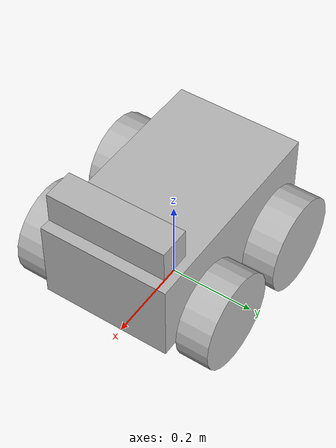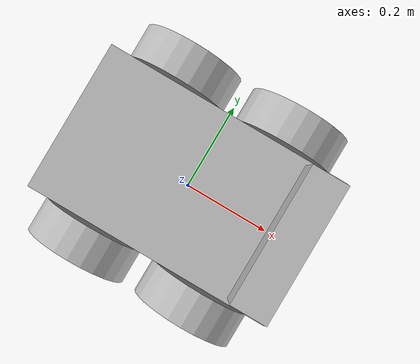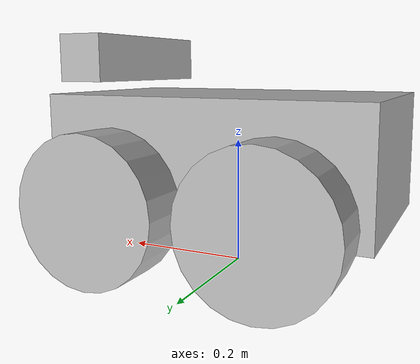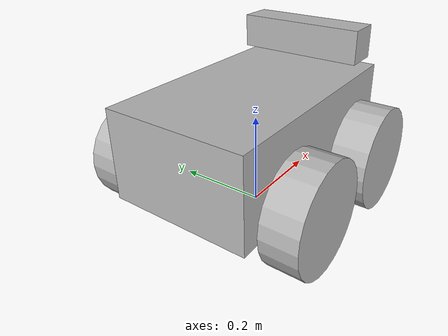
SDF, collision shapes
<?xml version="1.0" ?>
<sdf version="1.5">
  <model name="pioneer3at_ros_kinect">
    <pose>0 0 0.180 0 0 0</pose>
    <static>false</static>
    <link name="chassis">
      <inertial>
        <mass>14.0</mass>
        <inertia>
          <ixx>0.147116667</ixx>
          <ixy>0.0</ixy>
          <ixz>0.0</ixz>
          <iyy>0.334951167</iyy>
          <iyz>0.0</iyz>
          <izz>0.3978345</izz>
        </inertia>
      </inertial>
      <collision name="collision">
        <geometry>
          <box>
            <size>0.501 0.300 0.19</size>
          </box>
        </geometry>
      </collision>
      <visual name="visual">
        <geometry>
          <mesh>
            <uri>model://pioneer3at/meshes/chassis.dae</uri>
          </mesh>
        </geometry>
      </visual>
    </link>
    <link name="right_front_wheel">
      <pose>0.125 -0.201 -0.06 1.5707 0 0</pose>

      <inertial>
        <mass>1.5</mass>
        <inertia>
          <ixx>0.005240625</ixx>
          <iyy>0.005240625</iyy>
          <izz>0.009075</izz>
          <ixy>0</ixy>
          <ixz>0</ixz>
          <iyz>0</iyz>
        </inertia>
      </inertial>

      <collision name="collision">
        <geometry>
          <cylinder>
            <radius>0.110</radius>
            <length>0.075</length>
          </cylinder>
        </geometry>
        <surface>
          <friction>
            <ode>
              <mu>1</mu>
              <mu2>1</mu2>
              <slip1>0.5</slip1>
              <slip2>0</slip2>
            </ode>
          </friction>
        </surface>
      </collision>
      <visual name="visual">
        <geometry>
          <mesh>
            <uri>model://pioneer3at/meshes/wheel.dae</uri>
          </mesh>
        </geometry>
      </visual>
    </link>
    <link name="left_front_wheel">
      <pose>0.125 0.201 -0.06 1.5707 0 0</pose>

      <inertial>
        <mass>1.5</mass>
        <inertia>
          <ixx>0.005240625</ixx>
          <iyy>0.005240625</iyy>
          <izz>0.009075</izz>
          <ixy>0</ixy>
          <ixz>0</ixz>
          <iyz>0</iyz>
        </inertia>
      </inertial>

      <collision name="collision">
        <geometry>
          <cylinder>
            <radius>0.110</radius>
            <length>0.075</length>
          </cylinder>
        </geometry>
        <surface>
          <friction>
            <ode>
              <mu>1</mu>
              <mu2>1</mu2>
              <slip1>0.5</slip1>
              <slip2>0</slip2>
            </ode>
          </friction>
        </surface>
      </collision>
      <visual name="visual">
        <geometry>
          <mesh>
            <uri>model://pioneer3at/meshes/wheel.dae</uri>
          </mesh>
        </geometry>
      </visual>
    </link>
    <link name="right_rear_wheel">
      <pose>-0.125 -0.201 -0.06 1.5707 0 0</pose>

      <inertial>
        <mass>1.5</mass>
        <inertia>
          <ixx>0.005240625</ixx>
          <iyy>0.005240625</iyy>
          <izz>0.009075</izz>
          <ixy>0</ixy>
          <ixz>0</ixz>
          <iyz>0</iyz>
        </inertia>
      </inertial>

      <collision name="collision">
        <geometry>
          <cylinder>
            <radius>0.110</radius>
            <length>0.075</length>
          </cylinder>
        </geometry>
        <surface>
          <friction>
            <ode>
              <mu>1</mu>
              <mu2>1</mu2>
              <slip1>0.5</slip1>
              <slip2>0</slip2>
            </ode>
          </friction>
        </surface>
      </collision>
      <visual name="visual">
        <geometry>
          <mesh>
            <uri>model://pioneer3at/meshes/wheel.dae</uri>
          </mesh>
        </geometry>
      </visual>
    </link>
    <link name="left_rear_wheel">
      <pose>-0.125 0.201 -0.06 1.5707 0 0</pose>

      <inertial>
        <mass>1.5</mass>
        <inertia>
          <ixx>0.005240625</ixx>
          <iyy>0.005240625</iyy>
          <izz>0.009075</izz>
          <ixy>0</ixy>
          <ixz>0</ixz>
          <iyz>0</iyz>
        </inertia>
      </inertial>

      <collision name="collision">
        <geometry>
          <cylinder>
            <radius>0.110</radius>
            <length>0.075</length>
          </cylinder>
        </geometry>
        <surface>
          <friction>
            <ode>
              <mu>1</mu>
              <mu2>1</mu2>
              <slip1>0.5</slip1>
              <slip2>0</slip2>
            </ode>
          </friction>
        </surface>
      </collision>
      <visual name="visual">
        <geometry>
          <mesh>
            <uri>model://pioneer3at/meshes/wheel.dae</uri>
          </mesh>
        </geometry>
      </visual>
    </link>
    <joint type="revolute" name="right_front">
      <pose>0 0 0 0 0 0</pose>
      <child>right_front_wheel</child>
      <parent>chassis</parent>
      <axis>
        <xyz>0 1 0</xyz>
        <use_parent_model_frame>true</use_parent_model_frame>
      </axis>
    </joint>
    <joint type="revolute" name="right_rear">
      <pose>0 0 0 0 0 0</pose>
      <child>right_rear_wheel</child>
      <parent>chassis</parent>
      <axis>
        <xyz>0 1 0</xyz>
        <use_parent_model_frame>true</use_parent_model_frame>
      </axis>
    </joint>
    <joint type="revolute" name="left_front">
      <pose>0 0 0 0 0 0</pose>
      <child>left_front_wheel</child>
      <parent>chassis</parent>
      <axis>
        <xyz>0 1 0</xyz>
        <use_parent_model_frame>true</use_parent_model_frame>
      </axis>
    </joint>
    <joint type="revolute" name="left_rear">
      <pose>0 0 0 0 0 0</pose>
      <child>left_rear_wheel</child>
      <parent>chassis</parent>
      <axis>
        <xyz>0 1 0</xyz>
        <use_parent_model_frame>true</use_parent_model_frame>
      </axis>
    </joint>

		<plugin name="differential_drive_controller" filename="libgazebo_ros_diff_drive.so">
			<alwaysOn>true</alwaysOn>
			<updateRate>20</updateRate>
			<leftJoint>left_front</leftJoint>
			<rightJoint>right_front</rightJoint>
			<wheelSeparation>0.4</wheelSeparation>
			<wheelDiameter>0.1</wheelDiameter>
			<torque>20</torque>
			<commandTopic>cmd_vel</commandTopic>
			<odometryTopic>odom</odometryTopic>
			<odometryFrame>odom</odometryFrame>
			<robotBaseFrame>base_footprint</robotBaseFrame>
		</plugin>

    <include>
      <uri>model://kinect_ros</uri>
      <pose>0.2 0 0.15 0 0 0</pose>
    </include>
    <joint name="kinect_joint" type="fixed">
      <child>kinect_ros::link</child>
      <parent>chassis</parent>
    </joint>
  </model>
</sdf>

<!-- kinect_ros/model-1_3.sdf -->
<sdf version="1.3">
  <model name="kinect_ros">
    <pose>0 0 0.036 0 0 0</pose>
    <link name="link">
      <inertial>
        <mass>0.1</mass>
      </inertial>

      <collision name="collision">
        <geometry>
          <box>
            <size>0.073000 0.276000 0.072000</size>
          </box>
        </geometry>
      </collision>
      <visual name="visual">
        <geometry>
          <mesh>
            <uri>model://kinect/meshes/kinect.dae</uri>
          </mesh>
        </geometry>
      </visual>
      <sensor name="camera" type="depth">
        <update_rate>20</update_rate>
        <camera>
          <horizontal_fov>1.047198</horizontal_fov>
          <image>
            <width>640</width>
            <height>480</height>
            <format>R8G8B8</format>
          </image>
          <clip>
            <near>0.05</near>
            <far>3</far>
          </clip>
        </camera>
        <plugin name="camera_plugin" filename="libgazebo_ros_openni_kinect.so">
          <baseline>0.2</baseline>
          <alwaysOn>true</alwaysOn>
          <updateRate>0.0</updateRate>
          <cameraName>camera_ir</cameraName>
          <imageTopicName>/camera/depth/image_raw</imageTopicName>
          <cameraInfoTopicName>/camera/depth/camera_info</cameraInfoTopicName>
          <depthImageTopicName>/camera/depth/image_raw</depthImageTopicName>
          <depthImageInfoTopicName>/camera/depth/camera_info</depthImageInfoTopicName>
          <pointCloudTopicName>/camera/depth/points</pointCloudTopicName>
          <frameName>camera_link</frameName>
          <pointCloudCutoff>0.05</pointCloudCutoff>
          <distortionK1>0</distortionK1>
          <distortionK2>0</distortionK2>
          <distortionK3>0</distortionK3>
          <distortionT1>0</distortionT1>
          <distortionT2>0</distortionT2>
          <CxPrime>0</CxPrime>
          <Cx>0</Cx>
          <Cy>0</Cy>
          <focalLength>0</focalLength>
          <hackBaseline>0</hackBaseline>
        </plugin>
      </sensor>
    </link>
  </model>
</sdf>
